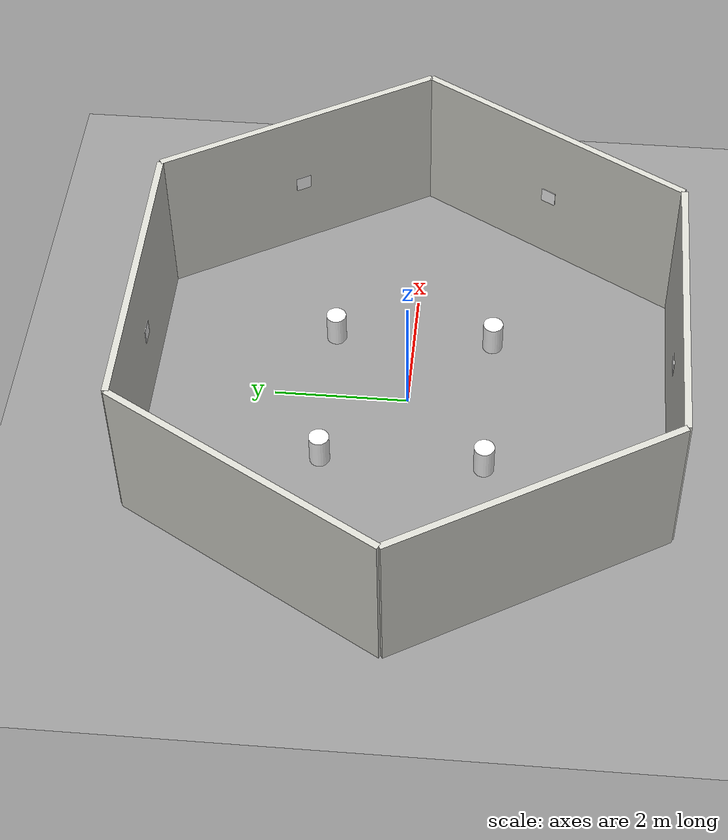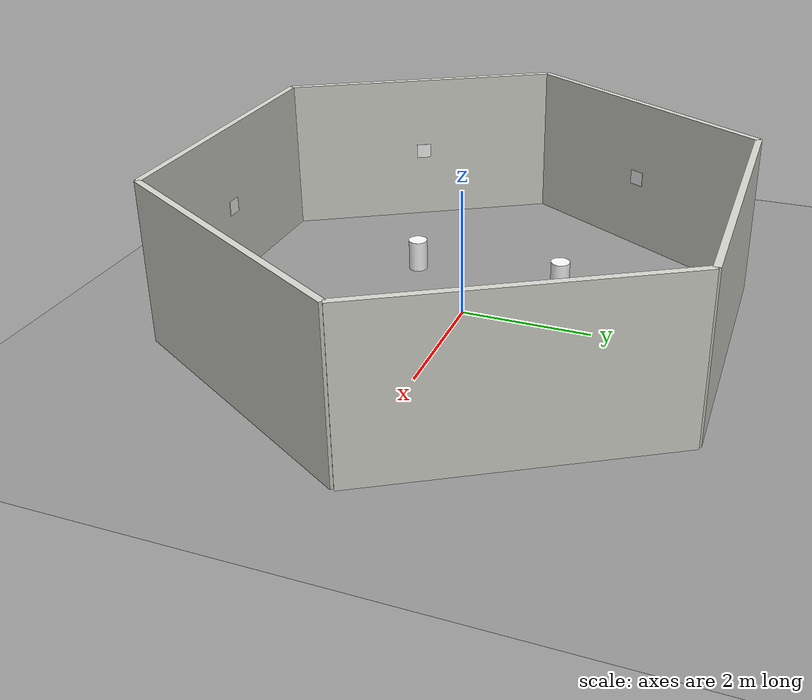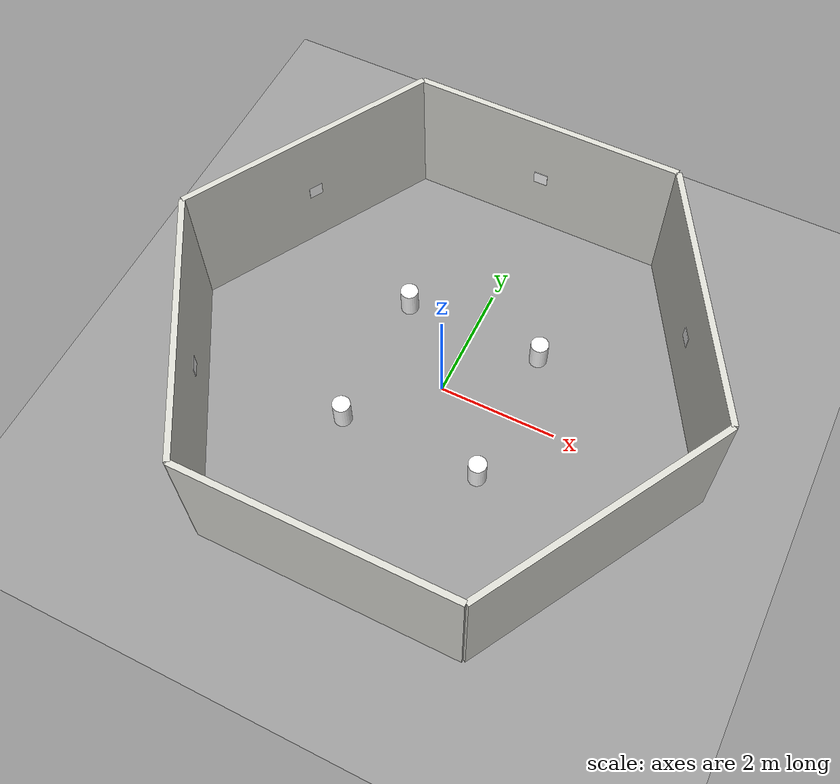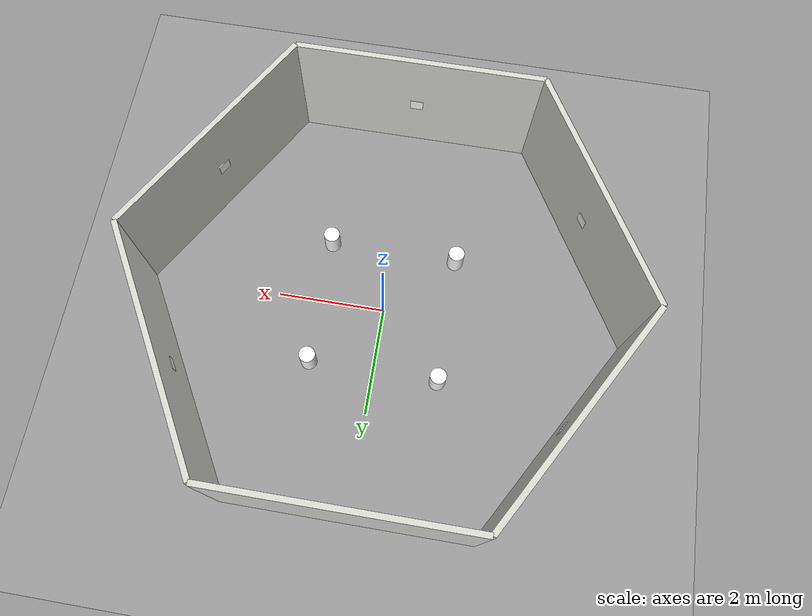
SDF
<?xml version="1.0" ?>
<sdf version="1.9">
  <world name="slam_thesis_room">

    <physics name="1ms" type="ignored">
      <max_step_size>0.001</max_step_size>
      <real_time_factor>1.0</real_time_factor>
    </physics>

    <!-- ============================================================
         SENSÖR VE FİZİK EKLENTİLERİ (GÜNCELLENDİ & DÜZELTİLDİ)
         ============================================================ -->
    <plugin filename="ignition-gazebo-physics-system" name="gz::sim::systems::Physics"/>
    <plugin filename="ignition-gazebo-sensors-system" name="gz::sim::systems::Sensors">
      <render_engine>ogre2</render_engine>
    </plugin>
    <plugin filename="ignition-gazebo-scene-broadcaster-system" name="gz::sim::systems::SceneBroadcaster"/>
    <plugin filename="ignition-gazebo-user-commands-system" name="gz::sim::systems::UserCommands"/>
    <plugin filename="ignition-gazebo-imu-system" name="gz::sim::systems::Imu"/>
    <plugin filename="ignition-gazebo-contact-system" name="gz::sim::systems::Contact"/>

    <light type="directional" name="sun">
      <cast_shadows>true</cast_shadows>
      <pose>0 0 5 0 0 0</pose>
      <diffuse>0.9 0.9 0.9 1</diffuse>
      <specular>0.2 0.2 0.2 1</specular>
      <attenuation>
        <range>20</range>
        <constant>0.9</constant>
        <linear>0.01</linear>
        <quadratic>0.001</quadratic>
      </attenuation>
      <direction>-0.4 0.3 -0.9</direction>
    </light>

    <model name="floor">
      <static>true</static>
      <link name="link">
        <collision name="collision">
          <geometry><plane><normal>0 0 1</normal><size>12 12</size></plane></geometry>
        </collision>
        <visual name="visual">
          <geometry><plane><normal>0 0 1</normal><size>12 12</size></plane></geometry>
          <material>
            <ambient>0.6 0.6 0.6 1</ambient>
            <diffuse>0.6 0.6 0.6 1</diffuse>
          </material>
        </visual>
      </link>
    </model>

    <model name="wall_0">
      <static>true</static>
      <pose>3.3750 1.9486 1.2500 0 0 2.0944</pose>
      <link name="link">
        <collision name="collision"><geometry><box><size>4.5000 0.1 2.5</size></box></geometry></collision>
        <visual name="visual">
          <geometry><box><size>4.5000 0.1 2.5</size></box></geometry>
          <material><ambient>0.85 0.85 0.82 1</ambient><diffuse>0.85 0.85 0.82 1</diffuse></material>
        </visual>
      </link>
    </model>

    <model name="wall_1">
      <static>true</static>
      <pose>0.0000 3.8971 1.2500 0 0 3.1416</pose>
      <link name="link">
        <collision name="collision"><geometry><box><size>4.5000 0.1 2.5</size></box></geometry></collision>
        <visual name="visual">
          <geometry><box><size>4.5000 0.1 2.5</size></box></geometry>
          <material><ambient>0.85 0.85 0.82 1</ambient><diffuse>0.85 0.85 0.82 1</diffuse></material>
        </visual>
      </link>
    </model>

    <model name="wall_2">
      <static>true</static>
      <pose>-3.3750 1.9486 1.2500 0 0 -2.0944</pose>
      <link name="link">
        <collision name="collision"><geometry><box><size>4.5000 0.1 2.5</size></box></geometry></collision>
        <visual name="visual">
          <geometry><box><size>4.5000 0.1 2.5</size></box></geometry>
          <material><ambient>0.85 0.85 0.82 1</ambient><diffuse>0.85 0.85 0.82 1</diffuse></material>
        </visual>
      </link>
    </model>

    <model name="wall_3">
      <static>true</static>
      <pose>-3.3750 -1.9486 1.2500 0 0 -1.0472</pose>
      <link name="link">
        <collision name="collision"><geometry><box><size>4.5000 0.1 2.5</size></box></geometry></collision>
        <visual name="visual">
          <geometry><box><size>4.5000 0.1 2.5</size></box></geometry>
          <material><ambient>0.85 0.85 0.82 1</ambient><diffuse>0.85 0.85 0.82 1</diffuse></material>
        </visual>
      </link>
    </model>

    <model name="wall_4">
      <static>true</static>
      <pose>-0.0000 -3.8971 1.2500 0 0 -0.0000</pose>
      <link name="link">
        <collision name="collision"><geometry><box><size>4.5000 0.1 2.5</size></box></geometry></collision>
        <visual name="visual">
          <geometry><box><size>4.5000 0.1 2.5</size></box></geometry>
          <material><ambient>0.85 0.85 0.82 1</ambient><diffuse>0.85 0.85 0.82 1</diffuse></material>
        </visual>
      </link>
    </model>

    <model name="wall_5">
      <static>true</static>
      <pose>3.3750 -1.9486 1.2500 0 0 1.0472</pose>
      <link name="link">
        <collision name="collision"><geometry><box><size>4.5000 0.1 2.5</size></box></geometry></collision>
        <visual name="visual">
          <geometry><box><size>4.5000 0.1 2.5</size></box></geometry>
          <material><ambient>0.85 0.85 0.82 1</ambient><diffuse>0.85 0.85 0.82 1</diffuse></material>
        </visual>
      </link>
    </model>

    <include>
      <uri>model://tag36h11_00000</uri>
      <name>tag_0</name>
      <pose>3.3274 1.9211 1.2000 -1.5708 0.0000 2.0944</pose>
    </include>

    <include>
      <uri>model://tag36h11_00001</uri>
      <name>tag_1</name>
      <pose>0.0000 3.8421 1.2000 -1.5708 0.0000 3.1416</pose>
    </include>

    <include>
      <uri>model://tag36h11_00002</uri>
      <name>tag_2</name>
      <pose>-3.3274 1.9211 1.2000 -1.5708 0.0000 -2.0944</pose>
    </include>

    <include>
      <uri>model://tag36h11_00003</uri>
      <name>tag_3</name>
      <pose>-3.3274 -1.9211 1.2000 -1.5708 0.0000 -1.0472</pose>
    </include>

    <include>
      <uri>model://tag36h11_00004</uri>
      <name>tag_4</name>
      <pose>-0.0000 -3.8421 1.2000 -1.5708 0.0000 -0.0000</pose>
    </include>

    <include>
      <uri>model://tag36h11_00005</uri>
      <name>tag_5</name>
      <pose>3.3274 -1.9211 1.2000 -1.5708 0.0000 1.0472</pose>
    </include>

    <model name="obstacle_0">
      <static>true</static>
      <pose>-1.2 -1.2 0.25 0 0 0</pose>
      <link name="link">
        <collision name="collision">
          <geometry><cylinder><radius>0.15</radius><length>0.5</length></cylinder></geometry>
        </collision>
        <visual name="visual">
          <geometry><cylinder><radius>0.15</radius><length>0.5</length></cylinder></geometry>
          <material><ambient>1 1 1 1</ambient><diffuse>1 1 1 1</diffuse><specular>0.2 0.2 0.2 1</specular></material>
        </visual>
      </link>
    </model>

    <model name="obstacle_1">
      <static>true</static>
      <pose>-1.2 1.2 0.25 0 0 0</pose>
      <link name="link">
        <collision name="collision">
          <geometry><cylinder><radius>0.15</radius><length>0.5</length></cylinder></geometry>
        </collision>
        <visual name="visual">
          <geometry><cylinder><radius>0.15</radius><length>0.5</length></cylinder></geometry>
          <material><ambient>1 1 1 1</ambient><diffuse>1 1 1 1</diffuse><specular>0.2 0.2 0.2 1</specular></material>
        </visual>
      </link>
    </model>

    <model name="obstacle_2">
      <static>true</static>
      <pose>1.2 -1.2 0.25 0 0 0</pose>
      <link name="link">
        <collision name="collision">
          <geometry><cylinder><radius>0.15</radius><length>0.5</length></cylinder></geometry>
        </collision>
        <visual name="visual">
          <geometry><cylinder><radius>0.15</radius><length>0.5</length></cylinder></geometry>
          <material><ambient>1 1 1 1</ambient><diffuse>1 1 1 1</diffuse><specular>0.2 0.2 0.2 1</specular></material>
        </visual>
      </link>
    </model>

    <model name="obstacle_3">
      <static>true</static>
      <pose>1.2 1.2 0.25 0 0 0</pose>
      <link name="link">
        <collision name="collision">
          <geometry><cylinder><radius>0.15</radius><length>0.5</length></cylinder></geometry>
        </collision>
        <visual name="visual">
          <geometry><cylinder><radius>0.15</radius><length>0.5</length></cylinder></geometry>
          <material><ambient>1 1 1 1</ambient><diffuse>1 1 1 1</diffuse><specular>0.2 0.2 0.2 1</specular></material>
        </visual>
      </link>
    </model>

  </world>
</sdf>

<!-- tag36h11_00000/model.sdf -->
<sdf version="1.9">
  <model name="tag36h11_00000">
    <static>true</static>
    <link name="link">
      <collision name="collision">
        <geometry>
          <box>
            <size>0.24 0.24 0.01</size>
          </box>
        </geometry>
      </collision>
      <visual name="visual">
        <geometry>
          <box>
            <size>0.24 0.24 0.01</size>
          </box>
        </geometry>
        <material>
          <ambient>1 1 1 1</ambient>
          <diffuse>1 1 1 1</diffuse>
          <specular>0.1 0.1 0.1 1</specular>
          <pbr>
            <metal>
              <albedo_map>materials/textures/tag36_11_00000.png</albedo_map>
              <roughness_map>materials/textures/tag36_11_00000.png</roughness_map>
              <metalness>0.0</metalness>
            </metal>
          </pbr>
        </material>
      </visual>
    </link>
  </model>
</sdf>

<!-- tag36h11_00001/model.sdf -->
<sdf version="1.9">
  <model name="tag36h11_00001">
    <static>true</static>
    <link name="link">
      <collision name="collision">
        <geometry>
          <box>
            <size>0.24 0.24 0.01</size>
          </box>
        </geometry>
      </collision>
      <visual name="visual">
        <geometry>
          <box>
            <size>0.24 0.24 0.01</size>
          </box>
        </geometry>
        <material>
          <ambient>1 1 1 1</ambient>
          <diffuse>1 1 1 1</diffuse>
          <specular>0.1 0.1 0.1 1</specular>
          <pbr>
            <metal>
              <albedo_map>materials/textures/tag36_11_00001.png</albedo_map>
              <roughness_map>materials/textures/tag36_11_00001.png</roughness_map>
              <metalness>0.0</metalness>
            </metal>
          </pbr>
        </material>
      </visual>
    </link>
  </model>
</sdf>

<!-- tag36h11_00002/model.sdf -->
<sdf version="1.9">
  <model name="tag36h11_00002">
    <static>true</static>
    <link name="link">
      <collision name="collision">
        <geometry>
          <box>
            <size>0.24 0.24 0.01</size>
          </box>
        </geometry>
      </collision>
      <visual name="visual">
        <geometry>
          <box>
            <size>0.24 0.24 0.01</size>
          </box>
        </geometry>
        <material>
          <ambient>1 1 1 1</ambient>
          <diffuse>1 1 1 1</diffuse>
          <specular>0.1 0.1 0.1 1</specular>
          <pbr>
            <metal>
              <albedo_map>materials/textures/tag36_11_00002.png</albedo_map>
              <roughness_map>materials/textures/tag36_11_00002.png</roughness_map>
              <metalness>0.0</metalness>
            </metal>
          </pbr>
        </material>
      </visual>
    </link>
  </model>
</sdf>

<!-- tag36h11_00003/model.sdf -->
<sdf version="1.9">
  <model name="tag36h11_00003">
    <static>true</static>
    <link name="link">
      <collision name="collision">
        <geometry>
          <box>
            <size>0.24 0.24 0.01</size>
          </box>
        </geometry>
      </collision>
      <visual name="visual">
        <geometry>
          <box>
            <size>0.24 0.24 0.01</size>
          </box>
        </geometry>
        <material>
          <ambient>1 1 1 1</ambient>
          <diffuse>1 1 1 1</diffuse>
          <specular>0.1 0.1 0.1 1</specular>
          <pbr>
            <metal>
              <albedo_map>materials/textures/tag36_11_00003.png</albedo_map>
              <roughness_map>materials/textures/tag36_11_00003.png</roughness_map>
              <metalness>0.0</metalness>
            </metal>
          </pbr>
        </material>
      </visual>
    </link>
  </model>
</sdf>

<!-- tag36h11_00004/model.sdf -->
<sdf version="1.9">
  <model name="tag36h11_00004">
    <static>true</static>
    <link name="link">
      <collision name="collision">
        <geometry>
          <box>
            <size>0.24 0.24 0.01</size>
          </box>
        </geometry>
      </collision>
      <visual name="visual">
        <geometry>
          <box>
            <size>0.24 0.24 0.01</size>
          </box>
        </geometry>
        <material>
          <ambient>1 1 1 1</ambient>
          <diffuse>1 1 1 1</diffuse>
          <specular>0.1 0.1 0.1 1</specular>
          <pbr>
            <metal>
              <albedo_map>materials/textures/tag36_11_00004.png</albedo_map>
              <roughness_map>materials/textures/tag36_11_00004.png</roughness_map>
              <metalness>0.0</metalness>
            </metal>
          </pbr>
        </material>
      </visual>
    </link>
  </model>
</sdf>

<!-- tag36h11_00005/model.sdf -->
<sdf version="1.9">
  <model name="tag36h11_00005">
    <static>true</static>
    <link name="link">
      <collision name="collision">
        <geometry>
          <box>
            <size>0.24 0.24 0.01</size>
          </box>
        </geometry>
      </collision>
      <visual name="visual">
        <geometry>
          <box>
            <size>0.24 0.24 0.01</size>
          </box>
        </geometry>
        <material>
          <ambient>1 1 1 1</ambient>
          <diffuse>1 1 1 1</diffuse>
          <specular>0.1 0.1 0.1 1</specular>
          <pbr>
            <metal>
              <albedo_map>materials/textures/tag36_11_00005.png</albedo_map>
              <roughness_map>materials/textures/tag36_11_00005.png</roughness_map>
              <metalness>0.0</metalness>
            </metal>
          </pbr>
        </material>
      </visual>
    </link>
  </model>
</sdf>
